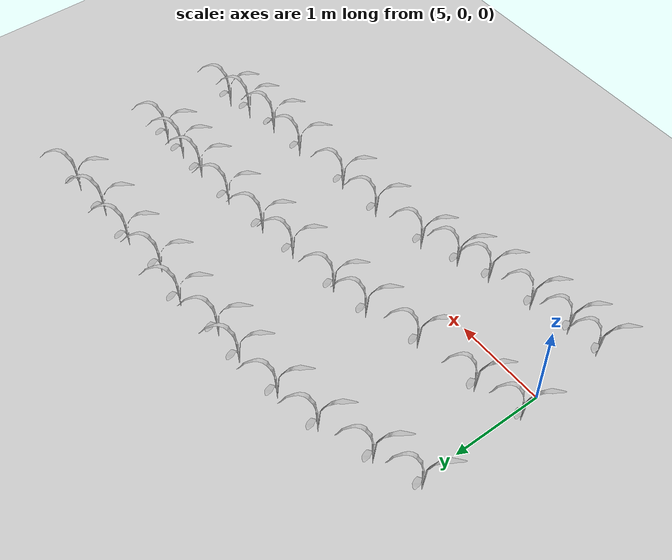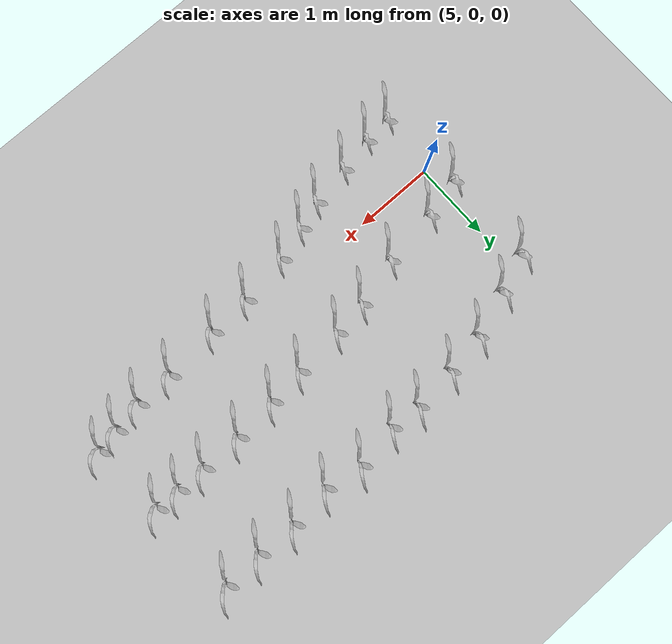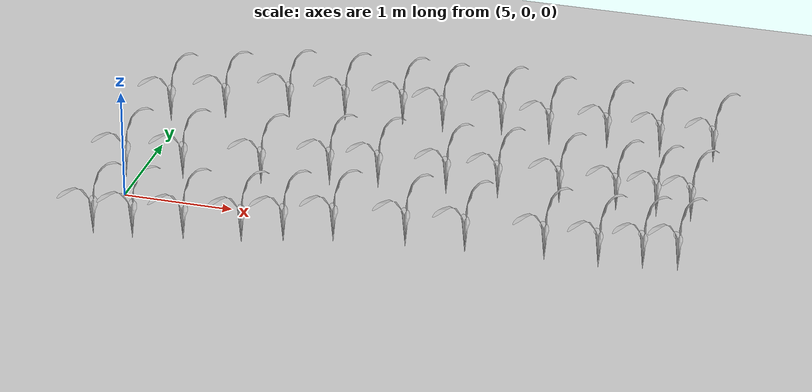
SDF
<sdf version="1.7">
 <world name="default">
  <model name="ground_plane">
   <static>1</static>
   <link name="link">
    <collision name="collision">
     <geometry><plane><normal>0 0 1</normal><size>100 100</size></plane></geometry>
     <surface><friction><ode><mu>100</mu><mu2>50</mu2></ode></friction></surface>
    </collision>
    <visual name="visual">
     <cast_shadows>0</cast_shadows>
     <geometry><plane><normal>0 0 1</normal><size>100 100</size></plane></geometry>
     <material>
      <script><uri>file://media/materials/scripts/gazebo.material</uri><name>Gazebo/Grey</name></script>
     </material>
    </visual>
   </link>
  </model>
  <model name="maize_02_clone_10">
   <pose>4.98717 -0.765127 0 1e-06 -3.5e-05 3.1e-05</pose>
   <link name="maize_02_link">
    <inertial>
     <pose>0 0 0.01 0 -0 0</pose>
     <mass>0.3</mass>
     <inertia>
      <ixx>0.00334167</ixx>
      <ixy>0</ixy>
      <ixz>0</ixz>
      <iyy>0.00334167</iyy>
      <iyz>0</iyz>
      <izz>1.66667e-05</izz>
     </inertia>
     <pose>0 0 0.1 0 -0 0</pose>
    </inertial>
    <collision name="collision">
     <pose>0 0 0.2 0 -0 0</pose>
     <geometry><box><size>0.02 0.02 0.4</size></box></geometry>
     <surface><friction><ode><mu>10</mu><mu2>10</mu2></ode></friction></surface>
    </collision>
    <visual name="visual">
     <geometry>
      <mesh><uri>model://maize_02/meshes/maize_02.dae</uri><scale>0.683166 0.683166 0.683166</scale></mesh>
     </geometry>
    </visual>
   </link>
  </model>
  <model name="maize_02_clone_11">
   <pose>5.33812 -0.73778 -0 -4e-06 -0 -0.000173</pose>
   <link name="maize_02_link">
    <inertial>
     <pose>0 0 0.01 0 -0 0</pose>
     <mass>0.3</mass>
     <inertia>
      <ixx>0.00334167</ixx>
      <ixy>0</ixy>
      <ixz>0</ixz>
      <iyy>0.00334167</iyy>
      <iyz>0</iyz>
      <izz>1.66667e-05</izz>
     </inertia>
     <pose>0 0 0.1 0 -0 0</pose>
    </inertial>
    <collision name="collision">
     <pose>0 0 0.2 0 -0 0</pose>
     <geometry><box><size>0.02 0.02 0.4</size></box></geometry>
     <surface><friction><ode><mu>10</mu><mu2>10</mu2></ode></friction></surface>
    </collision>
    <visual name="visual">
     <geometry>
      <mesh><uri>model://maize_02/meshes/maize_02.dae</uri><scale>0.683166 0.683166 0.683166</scale></mesh>
     </geometry>
    </visual>
   </link>
  </model>
  <model name="maize_02_clone_12">
   <pose>5.77464 -0.657881 -0 1e-06 -0 0.000187</pose>
   <link name="maize_02_link">
    <inertial>
     <pose>0 0 0.01 0 -0 0</pose>
     <mass>0.3</mass>
     <inertia>
      <ixx>0.00334167</ixx>
      <ixy>0</ixy>
      <ixz>0</ixz>
      <iyy>0.00334167</iyy>
      <iyz>0</iyz>
      <izz>1.66667e-05</izz>
     </inertia>
     <pose>0 0 0.1 0 -0 0</pose>
    </inertial>
    <collision name="collision">
     <pose>0 0 0.2 0 -0 0</pose>
     <geometry><box><size>0.02 0.02 0.4</size></box></geometry>
     <surface><friction><ode><mu>10</mu><mu2>10</mu2></ode></friction></surface>
    </collision>
    <visual name="visual">
     <geometry>
      <mesh><uri>model://maize_02/meshes/maize_02.dae</uri><scale>0.683166 0.683166 0.683166</scale></mesh>
     </geometry>
    </visual>
   </link>
  </model>
  <model name="maize_02_clone_13">
   <pose>6.27241 -0.564285 0 3.8e-05 2e-06 -1.8e-05</pose>
   <link name="maize_02_link">
    <inertial>
     <pose>0 0 0.01 0 -0 0</pose>
     <mass>0.3</mass>
     <inertia>
      <ixx>0.00334167</ixx>
      <ixy>0</ixy>
      <ixz>0</ixz>
      <iyy>0.00334167</iyy>
      <iyz>0</iyz>
      <izz>1.66667e-05</izz>
     </inertia>
     <pose>0 0 0.1 0 -0 0</pose>
    </inertial>
    <collision name="collision">
     <pose>0 0 0.2 0 -0 0</pose>
     <geometry><box><size>0.02 0.02 0.4</size></box></geometry>
     <surface><friction><ode><mu>10</mu><mu2>10</mu2></ode></friction></surface>
    </collision>
    <visual name="visual">
     <geometry>
      <mesh><uri>model://maize_02/meshes/maize_02.dae</uri><scale>0.683166 0.683166 0.683166</scale></mesh>
     </geometry>
    </visual>
   </link>
  </model>
  <model name="maize_02_clone_14">
   <pose>6.61643 -0.451672 -9e-06 -2e-06 -3.1e-05 -4.7e-05</pose>
   <link name="maize_02_link">
    <inertial>
     <pose>0 0 0.01 0 -0 0</pose>
     <mass>0.3</mass>
     <inertia>
      <ixx>0.00334167</ixx>
      <ixy>0</ixy>
      <ixz>0</ixz>
      <iyy>0.00334167</iyy>
      <iyz>0</iyz>
      <izz>1.66667e-05</izz>
     </inertia>
     <pose>0 0 0.1 0 -0 0</pose>
    </inertial>
    <collision name="collision">
     <pose>0 0 0.2 0 -0 0</pose>
     <geometry><box><size>0.02 0.02 0.4</size></box></geometry>
     <surface><friction><ode><mu>10</mu><mu2>10</mu2></ode></friction></surface>
    </collision>
    <visual name="visual">
     <geometry>
      <mesh><uri>model://maize_02/meshes/maize_02.dae</uri><scale>0.683166 0.683166 0.683166</scale></mesh>
     </geometry>
    </visual>
   </link>
  </model>
  <model name="maize_02_clone_15">
   <pose>7.02846 -0.323801 -0 -1e-06 1.4e-05 -1.8e-05</pose>
   <link name="maize_02_link">
    <inertial>
     <pose>0 0 0.01 0 -0 0</pose>
     <mass>0.3</mass>
     <inertia>
      <ixx>0.00334167</ixx>
      <ixy>0</ixy>
      <ixz>0</ixz>
      <iyy>0.00334167</iyy>
      <iyz>0</iyz>
      <izz>1.66667e-05</izz>
     </inertia>
     <pose>0 0 0.1 0 -0 0</pose>
    </inertial>
    <collision name="collision">
     <pose>0 0 0.2 0 -0 0</pose>
     <geometry><box><size>0.02 0.02 0.4</size></box></geometry>
     <surface><friction><ode><mu>10</mu><mu2>10</mu2></ode></friction></surface>
    </collision>
    <visual name="visual">
     <geometry>
      <mesh><uri>model://maize_02/meshes/maize_02.dae</uri><scale>0.683166 0.683166 0.683166</scale></mesh>
     </geometry>
    </visual>
   </link>
  </model>
  <model name="maize_02_clone_16">
   <pose>7.64889 -0.229599 0 -2.3e-05 9e-06 -0.000341</pose>
   <link name="maize_02_link">
    <inertial>
     <pose>0 0 0.01 0 -0 0</pose>
     <mass>0.3</mass>
     <inertia>
      <ixx>0.00334167</ixx>
      <ixy>0</ixy>
      <ixz>0</ixz>
      <iyy>0.00334167</iyy>
      <iyz>0</iyz>
      <izz>1.66667e-05</izz>
     </inertia>
     <pose>0 0 0.1 0 -0 0</pose>
    </inertial>
    <collision name="collision">
     <pose>0 0 0.2 0 -0 0</pose>
     <geometry><box><size>0.02 0.02 0.4</size></box></geometry>
     <surface><friction><ode><mu>10</mu><mu2>10</mu2></ode></friction></surface>
    </collision>
    <visual name="visual">
     <geometry>
      <mesh><uri>model://maize_02/meshes/maize_02.dae</uri><scale>0.683166 0.683166 0.683166</scale></mesh>
     </geometry>
    </visual>
   </link>
  </model>
  <model name="maize_02_clone_17">
   <pose>8.17413 -0.201564 0 -2.6e-05 -5e-06 -9e-05</pose>
   <link name="maize_02_link">
    <inertial>
     <pose>0 0 0.01 0 -0 0</pose>
     <mass>0.3</mass>
     <inertia>
      <ixx>0.00334167</ixx>
      <ixy>0</ixy>
      <ixz>0</ixz>
      <iyy>0.00334167</iyy>
      <iyz>0</iyz>
      <izz>1.66667e-05</izz>
     </inertia>
     <pose>0 0 0.1 0 -0 0</pose>
    </inertial>
    <collision name="collision">
     <pose>0 0 0.2 0 -0 0</pose>
     <geometry><box><size>0.02 0.02 0.4</size></box></geometry>
     <surface><friction><ode><mu>10</mu><mu2>10</mu2></ode></friction></surface>
    </collision>
    <visual name="visual">
     <geometry>
      <mesh><uri>model://maize_02/meshes/maize_02.dae</uri><scale>0.683166 0.683166 0.683166</scale></mesh>
     </geometry>
    </visual>
   </link>
  </model>
  <model name="maize_02_clone_18">
   <pose>8.86057 -0.137301 -0 4e-06 -0 -0.000171</pose>
   <link name="maize_02_link">
    <inertial>
     <pose>0 0 0.01 0 -0 0</pose>
     <mass>0.3</mass>
     <inertia>
      <ixx>0.00334167</ixx>
      <ixy>0</ixy>
      <ixz>0</ixz>
      <iyy>0.00334167</iyy>
      <iyz>0</iyz>
      <izz>1.66667e-05</izz>
     </inertia>
     <pose>0 0 0.1 0 -0 0</pose>
    </inertial>
    <collision name="collision">
     <pose>0 0 0.2 0 -0 0</pose>
     <geometry><box><size>0.02 0.02 0.4</size></box></geometry>
     <surface><friction><ode><mu>10</mu><mu2>10</mu2></ode></friction></surface>
    </collision>
    <visual name="visual">
     <geometry>
      <mesh><uri>model://maize_02/meshes/maize_02.dae</uri><scale>0.683166 0.683166 0.683166</scale></mesh>
     </geometry>
    </visual>
   </link>
  </model>
  <model name="maize_02_clone_19">
   <pose>9.33472 -0.1297 -0 -2e-06 -0 4e-06</pose>
   <link name="maize_02_link">
    <inertial>
     <pose>0 0 0.01 0 -0 0</pose>
     <mass>0.3</mass>
     <inertia>
      <ixx>0.00334167</ixx>
      <ixy>0</ixy>
      <ixz>0</ixz>
      <iyy>0.00334167</iyy>
      <iyz>0</iyz>
      <izz>1.66667e-05</izz>
     </inertia>
     <pose>0 0 0.1 0 -0 0</pose>
    </inertial>
    <collision name="collision">
     <pose>0 0 0.2 0 -0 0</pose>
     <geometry><box><size>0.02 0.02 0.4</size></box></geometry>
     <surface><friction><ode><mu>10</mu><mu2>10</mu2></ode></friction></surface>
    </collision>
    <visual name="visual">
     <geometry>
      <mesh><uri>model://maize_02/meshes/maize_02.dae</uri><scale>0.683166 0.683166 0.683166</scale></mesh>
     </geometry>
    </visual>
   </link>
  </model>
  <model name="maize_02_clone_20">
   <pose>10 -0 0 -1.4e-05 3e-06 -1.7e-05</pose>
   <link name="maize_02_link">
    <inertial>
     <pose>0 0 0.01 0 -0 0</pose>
     <mass>0.3</mass>
     <inertia>
      <ixx>0.00334167</ixx>
      <ixy>0</ixy>
      <ixz>0</ixz>
      <iyy>0.00334167</iyy>
      <iyz>0</iyz>
      <izz>1.66667e-05</izz>
     </inertia>
     <pose>0 0 0.1 0 -0 0</pose>
    </inertial>
    <collision name="collision">
     <pose>0 0 0.2 0 -0 0</pose>
     <geometry><box><size>0.02 0.02 0.4</size></box></geometry>
     <surface><friction><ode><mu>10</mu><mu2>10</mu2></ode></friction></surface>
    </collision>
    <visual name="visual">
     <geometry>
      <mesh><uri>model://maize_02/meshes/maize_02.dae</uri><scale>0.683166 0.683166 0.683166</scale></mesh>
     </geometry>
    </visual>
   </link>
  </model>
  <model name="maize_02_clone_21">
   <pose>9.70744 -0.060396 -9e-06 2.4e-05 6e-06 3.4e-05</pose>
   <link name="maize_02_link">
    <inertial>
     <pose>0 0 0.01 0 -0 0</pose>
     <mass>0.3</mass>
     <inertia>
      <ixx>0.00334167</ixx>
      <ixy>0</ixy>
      <ixz>0</ixz>
      <iyy>0.00334167</iyy>
      <iyz>0</iyz>
      <izz>1.66667e-05</izz>
     </inertia>
     <pose>0 0 0.1 0 -0 0</pose>
    </inertial>
    <collision name="collision">
     <pose>0 0 0.2 0 -0 0</pose>
     <geometry><box><size>0.02 0.02 0.4</size></box></geometry>
     <surface><friction><ode><mu>10</mu><mu2>10</mu2></ode></friction></surface>
    </collision>
    <visual name="visual">
     <geometry>
      <mesh><uri>model://maize_02/meshes/maize_02.dae</uri><scale>0.683166 0.683166 0.683166</scale></mesh>
     </geometry>
    </visual>
   </link>
  </model>
  <model name="maize_02_clone_34">
   <pose>4.90415 0.302408 -9e-06 -1.7e-05 2e-06 3.2e-05</pose>
   <link name="maize_02_link">
    <inertial>
     <pose>0 0 0.01 0 -0 0</pose>
     <mass>0.3</mass>
     <inertia>
      <ixx>0.00334167</ixx>
      <ixy>0</ixy>
      <ixz>0</ixz>
      <iyy>0.00334167</iyy>
      <iyz>0</iyz>
      <izz>1.66667e-05</izz>
     </inertia>
     <pose>0 0 0.1 0 -0 0</pose>
    </inertial>
    <collision name="collision">
     <pose>0 0 0.2 0 -0 0</pose>
     <geometry><box><size>0.02 0.02 0.4</size></box></geometry>
     <surface><friction><ode><mu>10</mu><mu2>10</mu2></ode></friction></surface>
    </collision>
    <visual name="visual">
     <geometry>
      <mesh><uri>model://maize_02/meshes/maize_02.dae</uri><scale>0.683166 0.683166 0.683166</scale></mesh>
     </geometry>
    </visual>
   </link>
  </model>
  <model name="maize_02_clone_35">
   <pose>5.39817 0.421571 -8e-06 5.9e-05 -3e-06 6.3e-05</pose>
   <link name="maize_02_link">
    <inertial>
     <pose>0 0 0.01 0 -0 0</pose>
     <mass>0.3</mass>
     <inertia>
      <ixx>0.00334167</ixx>
      <ixy>0</ixy>
      <ixz>0</ixz>
      <iyy>0.00334167</iyy>
      <iyz>0</iyz>
      <izz>1.66667e-05</izz>
     </inertia>
     <pose>0 0 0.1 0 -0 0</pose>
    </inertial>
    <collision name="collision">
     <pose>0 0 0.2 0 -0 0</pose>
     <geometry><box><size>0.02 0.02 0.4</size></box></geometry>
     <surface><friction><ode><mu>10</mu><mu2>10</mu2></ode></friction></surface>
    </collision>
    <visual name="visual">
     <geometry>
      <mesh><uri>model://maize_02/meshes/maize_02.dae</uri><scale>0.683166 0.683166 0.683166</scale></mesh>
     </geometry>
    </visual>
   </link>
  </model>
  <model name="maize_02_clone_36">
   <pose>6.09874 0.518274 -0 -3e-06 4e-06 0.0001</pose>
   <link name="maize_02_link">
    <inertial>
     <pose>0 0 0.01 0 -0 0</pose>
     <mass>0.3</mass>
     <inertia>
      <ixx>0.00334167</ixx>
      <ixy>0</ixy>
      <ixz>0</ixz>
      <iyy>0.00334167</iyy>
      <iyz>0</iyz>
      <izz>1.66667e-05</izz>
     </inertia>
     <pose>0 0 0.1 0 -0 0</pose>
    </inertial>
    <collision name="collision">
     <pose>0 0 0.2 0 -0 0</pose>
     <geometry><box><size>0.02 0.02 0.4</size></box></geometry>
     <surface><friction><ode><mu>10</mu><mu2>10</mu2></ode></friction></surface>
    </collision>
    <visual name="visual">
     <geometry>
      <mesh><uri>model://maize_02/meshes/maize_02.dae</uri><scale>0.683166 0.683166 0.683166</scale></mesh>
     </geometry>
    </visual>
   </link>
  </model>
  <model name="maize_02_clone_37">
   <pose>6.68536 0.680392 -0 0 -4e-06 5.4e-05</pose>
   <link name="maize_02_link">
    <inertial>
     <pose>0 0 0.01 0 -0 0</pose>
     <mass>0.3</mass>
     <inertia>
      <ixx>0.00334167</ixx>
      <ixy>0</ixy>
      <ixz>0</ixz>
      <iyy>0.00334167</iyy>
      <iyz>0</iyz>
      <izz>1.66667e-05</izz>
     </inertia>
     <pose>0 0 0.1 0 -0 0</pose>
    </inertial>
    <collision name="collision">
     <pose>0 0 0.2 0 -0 0</pose>
     <geometry><box><size>0.02 0.02 0.4</size></box></geometry>
     <surface><friction><ode><mu>10</mu><mu2>10</mu2></ode></friction></surface>
    </collision>
    <visual name="visual">
     <geometry>
      <mesh><uri>model://maize_02/meshes/maize_02.dae</uri><scale>0.683166 0.683166 0.683166</scale></mesh>
     </geometry>
    </visual>
   </link>
  </model>
  <model name="maize_02_clone_38">
   <pose>7.11717 0.742825 -0 0 2e-06 -6.6e-05</pose>
   <link name="maize_02_link">
    <inertial>
     <pose>0 0 0.01 0 -0 0</pose>
     <mass>0.3</mass>
     <inertia>
      <ixx>0.00334167</ixx>
      <ixy>0</ixy>
      <ixz>0</ixz>
      <iyy>0.00334167</iyy>
      <iyz>0</iyz>
      <izz>1.66667e-05</izz>
     </inertia>
     <pose>0 0 0.1 0 -0 0</pose>
    </inertial>
    <collision name="collision">
     <pose>0 0 0.2 0 -0 0</pose>
     <geometry><box><size>0.02 0.02 0.4</size></box></geometry>
     <surface><friction><ode><mu>10</mu><mu2>10</mu2></ode></friction></surface>
    </collision>
    <visual name="visual">
     <geometry>
      <mesh><uri>model://maize_02/meshes/maize_02.dae</uri><scale>0.683166 0.683166 0.683166</scale></mesh>
     </geometry>
    </visual>
   </link>
  </model>
  <model name="maize_02_clone_39">
   <pose>7.72823 0.79479 -0 3e-06 -0 0.000145</pose>
   <link name="maize_02_link">
    <inertial>
     <pose>0 0 0.01 0 -0 0</pose>
     <mass>0.3</mass>
     <inertia>
      <ixx>0.00334167</ixx>
      <ixy>0</ixy>
      <ixz>0</ixz>
      <iyy>0.00334167</iyy>
      <iyz>0</iyz>
      <izz>1.66667e-05</izz>
     </inertia>
     <pose>0 0 0.1 0 -0 0</pose>
    </inertial>
    <collision name="collision">
     <pose>0 0 0.2 0 -0 0</pose>
     <geometry><box><size>0.02 0.02 0.4</size></box></geometry>
     <surface><friction><ode><mu>10</mu><mu2>10</mu2></ode></friction></surface>
    </collision>
    <visual name="visual">
     <geometry>
      <mesh><uri>model://maize_02/meshes/maize_02.dae</uri><scale>0.683166 0.683166 0.683166</scale></mesh>
     </geometry>
    </visual>
   </link>
  </model>
  <model name="maize_02_clone_40">
   <pose>8.18719 0.844298 0 -2e-06 2.1e-05 4.4e-05</pose>
   <link name="maize_02_link">
    <inertial>
     <pose>0 0 0.01 0 -0 0</pose>
     <mass>0.3</mass>
     <inertia>
      <ixx>0.00334167</ixx>
      <ixy>0</ixy>
      <ixz>0</ixz>
      <iyy>0.00334167</iyy>
      <iyz>0</iyz>
      <izz>1.66667e-05</izz>
     </inertia>
     <pose>0 0 0.1 0 -0 0</pose>
    </inertial>
    <collision name="collision">
     <pose>0 0 0.2 0 -0 0</pose>
     <geometry><box><size>0.02 0.02 0.4</size></box></geometry>
     <surface><friction><ode><mu>10</mu><mu2>10</mu2></ode></friction></surface>
    </collision>
    <visual name="visual">
     <geometry>
      <mesh><uri>model://maize_02/meshes/maize_02.dae</uri><scale>0.683166 0.683166 0.683166</scale></mesh>
     </geometry>
    </visual>
   </link>
  </model>
  <model name="maize_02_clone_41">
   <pose>8.73321 0.894981 1e-06 -3.9e-05 1.2e-05 2.5e-05</pose>
   <link name="maize_02_link">
    <inertial>
     <pose>0 0 0.01 0 -0 0</pose>
     <mass>0.3</mass>
     <inertia>
      <ixx>0.00334167</ixx>
      <ixy>0</ixy>
      <ixz>0</ixz>
      <iyy>0.00334167</iyy>
      <iyz>0</iyz>
      <izz>1.66667e-05</izz>
     </inertia>
     <pose>0 0 0.1 0 -0 0</pose>
    </inertial>
    <collision name="collision">
     <pose>0 0 0.2 0 -0 0</pose>
     <geometry><box><size>0.02 0.02 0.4</size></box></geometry>
     <surface><friction><ode><mu>10</mu><mu2>10</mu2></ode></friction></surface>
    </collision>
    <visual name="visual">
     <geometry>
      <mesh><uri>model://maize_02/meshes/maize_02.dae</uri><scale>0.683166 0.683166 0.683166</scale></mesh>
     </geometry>
    </visual>
   </link>
  </model>
  <model name="maize_02_clone_42">
   <pose>9.24563 0.900565 -0 0 4e-06 -1.2e-05</pose>
   <link name="maize_02_link">
    <inertial>
     <pose>0 0 0.01 0 -0 0</pose>
     <mass>0.3</mass>
     <inertia>
      <ixx>0.00334167</ixx>
      <ixy>0</ixy>
      <ixz>0</ixz>
      <iyy>0.00334167</iyy>
      <iyz>0</iyz>
      <izz>1.66667e-05</izz>
     </inertia>
     <pose>0 0 0.1 0 -0 0</pose>
    </inertial>
    <collision name="collision">
     <pose>0 0 0.2 0 -0 0</pose>
     <geometry><box><size>0.02 0.02 0.4</size></box></geometry>
     <surface><friction><ode><mu>10</mu><mu2>10</mu2></ode></friction></surface>
    </collision>
    <visual name="visual">
     <geometry>
      <mesh><uri>model://maize_02/meshes/maize_02.dae</uri><scale>0.683166 0.683166 0.683166</scale></mesh>
     </geometry>
    </visual>
   </link>
  </model>
  <model name="maize_02_clone_43">
   <pose>9.60797 0.90127 -0 0 3e-06 7e-06</pose>
   <link name="maize_02_link">
    <inertial>
     <pose>0 0 0.01 0 -0 0</pose>
     <mass>0.3</mass>
     <inertia>
      <ixx>0.00334167</ixx>
      <ixy>0</ixy>
      <ixz>0</ixz>
      <iyy>0.00334167</iyy>
      <iyz>0</iyz>
      <izz>1.66667e-05</izz>
     </inertia>
     <pose>0 0 0.1 0 -0 0</pose>
    </inertial>
    <collision name="collision">
     <pose>0 0 0.2 0 -0 0</pose>
     <geometry><box><size>0.02 0.02 0.4</size></box></geometry>
     <surface><friction><ode><mu>10</mu><mu2>10</mu2></ode></friction></surface>
    </collision>
    <visual name="visual">
     <geometry>
      <mesh><uri>model://maize_02/meshes/maize_02.dae</uri><scale>0.683166 0.683166 0.683166</scale></mesh>
     </geometry>
    </visual>
   </link>
  </model>
  <model name="maize_02_clone_44">
   <pose>9.91747 0.900106 -0 -3e-06 0 0.000123</pose>
   <link name="maize_02_link">
    <inertial>
     <pose>0 0 0.01 0 -0 0</pose>
     <mass>0.3</mass>
     <inertia>
      <ixx>0.00334167</ixx>
      <ixy>0</ixy>
      <ixz>0</ixz>
      <iyy>0.00334167</iyy>
      <iyz>0</iyz>
      <izz>1.66667e-05</izz>
     </inertia>
     <pose>0 0 0.1 0 -0 0</pose>
    </inertial>
    <collision name="collision">
     <pose>0 0 0.2 0 -0 0</pose>
     <geometry><box><size>0.02 0.02 0.4</size></box></geometry>
     <surface><friction><ode><mu>10</mu><mu2>10</mu2></ode></friction></surface>
    </collision>
    <visual name="visual">
     <geometry>
      <mesh><uri>model://maize_02/meshes/maize_02.dae</uri><scale>0.683166 0.683166 0.683166</scale></mesh>
     </geometry>
    </visual>
   </link>
  </model>
  <model name="maize_02_clone_56">
   <pose>4.92146 1.46881 -9e-06 3.7e-05 2e-06 6.6e-05</pose>
   <link name="maize_02_link">
    <inertial>
     <pose>0 0 0.01 0 -0 0</pose>
     <mass>0.3</mass>
     <inertia>
      <ixx>0.00334167</ixx>
      <ixy>0</ixy>
      <ixz>0</ixz>
      <iyy>0.00334167</iyy>
      <iyz>0</iyz>
      <izz>1.66667e-05</izz>
     </inertia>
     <pose>0 0 0.1 0 -0 0</pose>
    </inertial>
    <collision name="collision">
     <pose>0 0 0.2 0 -0 0</pose>
     <geometry><box><size>0.02 0.02 0.4</size></box></geometry>
     <surface><friction><ode><mu>10</mu><mu2>10</mu2></ode></friction></surface>
    </collision>
    <visual name="visual">
     <geometry>
      <mesh><uri>model://maize_02/meshes/maize_02.dae</uri><scale>0.683166 0.683166 0.683166</scale></mesh>
     </geometry>
    </visual>
   </link>
  </model>
  <model name="maize_02_clone_57">
   <pose>5.38932 1.64277 0 1.1e-05 1.1e-05 8e-06</pose>
   <link name="maize_02_link">
    <inertial>
     <pose>0 0 0.01 0 -0 0</pose>
     <mass>0.3</mass>
     <inertia>
      <ixx>0.00334167</ixx>
      <ixy>0</ixy>
      <ixz>0</ixz>
      <iyy>0.00334167</iyy>
      <iyz>0</iyz>
      <izz>1.66667e-05</izz>
     </inertia>
     <pose>0 0 0.1 0 -0 0</pose>
    </inertial>
    <collision name="collision">
     <pose>0 0 0.2 0 -0 0</pose>
     <geometry><box><size>0.02 0.02 0.4</size></box></geometry>
     <surface><friction><ode><mu>10</mu><mu2>10</mu2></ode></friction></surface>
    </collision>
    <visual name="visual">
     <geometry>
      <mesh><uri>model://maize_02/meshes/maize_02.dae</uri><scale>0.683166 0.683166 0.683166</scale></mesh>
     </geometry>
    </visual>
   </link>
  </model>
  <model name="maize_02_clone_58">
   <pose>5.94229 1.83449 -0 2e-06 -1.3e-05 -1.9e-05</pose>
   <link name="maize_02_link">
    <inertial>
     <pose>0 0 0.01 0 -0 0</pose>
     <mass>0.3</mass>
     <inertia>
      <ixx>0.00334167</ixx>
      <ixy>0</ixy>
      <ixz>0</ixz>
      <iyy>0.00334167</iyy>
      <iyz>0</iyz>
      <izz>1.66667e-05</izz>
     </inertia>
     <pose>0 0 0.1 0 -0 0</pose>
    </inertial>
    <collision name="collision">
     <pose>0 0 0.2 0 -0 0</pose>
     <geometry><box><size>0.02 0.02 0.4</size></box></geometry>
     <surface><friction><ode><mu>10</mu><mu2>10</mu2></ode></friction></surface>
    </collision>
    <visual name="visual">
     <geometry>
      <mesh><uri>model://maize_02/meshes/maize_02.dae</uri><scale>0.683166 0.683166 0.683166</scale></mesh>
     </geometry>
    </visual>
   </link>
  </model>
  <model name="maize_02_clone_59">
   <pose>6.45398 1.9152 -9e-06 1.4e-05 1e-06 3.4e-05</pose>
   <link name="maize_02_link">
    <inertial>
     <pose>0 0 0.01 0 -0 0</pose>
     <mass>0.3</mass>
     <inertia>
      <ixx>0.00334167</ixx>
      <ixy>0</ixy>
      <ixz>0</ixz>
      <iyy>0.00334167</iyy>
      <iyz>0</iyz>
      <izz>1.66667e-05</izz>
     </inertia>
     <pose>0 0 0.1 0 -0 0</pose>
    </inertial>
    <collision name="collision">
     <pose>0 0 0.2 0 -0 0</pose>
     <geometry><box><size>0.02 0.02 0.4</size></box></geometry>
     <surface><friction><ode><mu>10</mu><mu2>10</mu2></ode></friction></surface>
    </collision>
    <visual name="visual">
     <geometry>
      <mesh><uri>model://maize_02/meshes/maize_02.dae</uri><scale>0.683166 0.683166 0.683166</scale></mesh>
     </geometry>
    </visual>
   </link>
  </model>
  <model name="maize_02_clone_60">
   <pose>6.98781 1.97249 1e-06 1e-05 7.8e-05 3e-06</pose>
   <link name="maize_02_link">
    <inertial>
     <pose>0 0 0.01 0 -0 0</pose>
     <mass>0.3</mass>
     <inertia>
      <ixx>0.00334167</ixx>
      <ixy>0</ixy>
      <ixz>0</ixz>
      <iyy>0.00334167</iyy>
      <iyz>0</iyz>
      <izz>1.66667e-05</izz>
     </inertia>
     <pose>0 0 0.1 0 -0 0</pose>
    </inertial>
    <collision name="collision">
     <pose>0 0 0.2 0 -0 0</pose>
     <geometry><box><size>0.02 0.02 0.4</size></box></geometry>
     <surface><friction><ode><mu>10</mu><mu2>10</mu2></ode></friction></surface>
    </collision>
    <visual name="visual">
     <geometry>
      <mesh><uri>model://maize_02/meshes/maize_02.dae</uri><scale>0.683166 0.683166 0.683166</scale></mesh>
     </geometry>
    </visual>
   </link>
  </model>
  <model name="maize_02_clone_61">
   <pose>7.37462 1.94781 0 1.7e-05 2.4e-05 4e-06</pose>
   <link name="maize_02_link">
    <inertial>
     <pose>0 0 0.01 0 -0 0</pose>
     <mass>0.3</mass>
     <inertia>
      <ixx>0.00334167</ixx>
      <ixy>0</ixy>
      <ixz>0</ixz>
      <iyy>0.00334167</iyy>
      <iyz>0</iyz>
      <izz>1.66667e-05</izz>
     </inertia>
     <pose>0 0 0.1 0 -0 0</pose>
    </inertial>
    <collision name="collision">
     <pose>0 0 0.2 0 -0 0</pose>
     <geometry><box><size>0.02 0.02 0.4</size></box></geometry>
     <surface><friction><ode><mu>10</mu><mu2>10</mu2></ode></friction></surface>
    </collision>
    <visual name="visual">
     <geometry>
      <mesh><uri>model://maize_02/meshes/maize_02.dae</uri><scale>0.683166 0.683166 0.683166</scale></mesh>
     </geometry>
    </visual>
   </link>
  </model>
  <model name="maize_02_clone_62">
   <pose>7.90705 2.03814 -0 4e-06 0 2.5e-05</pose>
   <link name="maize_02_link">
    <inertial>
     <pose>0 0 0.01 0 -0 0</pose>
     <mass>0.3</mass>
     <inertia>
      <ixx>0.00334167</ixx>
      <ixy>0</ixy>
      <ixz>0</ixz>
      <iyy>0.00334167</iyy>
      <iyz>0</iyz>
      <izz>1.66667e-05</izz>
     </inertia>
     <pose>0 0 0.1 0 -0 0</pose>
    </inertial>
    <collision name="collision">
     <pose>0 0 0.2 0 -0 0</pose>
     <geometry><box><size>0.02 0.02 0.4</size></box></geometry>
     <surface><friction><ode><mu>10</mu><mu2>10</mu2></ode></friction></surface>
    </collision>
    <visual name="visual">
     <geometry>
      <mesh><uri>model://maize_02/meshes/maize_02.dae</uri><scale>0.683166 0.683166 0.683166</scale></mesh>
     </geometry>
    </visual>
   </link>
  </model>
  <model name="maize_02_clone_63">
   <pose>8.37286 1.96049 0 -2e-06 -6e-06 1e-06</pose>
   <link name="maize_02_link">
    <inertial>
     <pose>0 0 0.01 0 -0 0</pose>
     <mass>0.3</mass>
     <inertia>
      <ixx>0.00334167</ixx>
      <ixy>0</ixy>
      <ixz>0</ixz>
      <iyy>0.00334167</iyy>
      <iyz>0</iyz>
      <izz>1.66667e-05</izz>
     </inertia>
     <pose>0 0 0.1 0 -0 0</pose>
    </inertial>
    <collision name="collision">
     <pose>0 0 0.2 0 -0 0</pose>
     <geometry><box><size>0.02 0.02 0.4</size></box></geometry>
     <surface><friction><ode><mu>10</mu><mu2>10</mu2></ode></friction></surface>
    </collision>
    <visual name="visual">
     <geometry>
      <mesh><uri>model://maize_02/meshes/maize_02.dae</uri><scale>0.683166 0.683166 0.683166</scale></mesh>
     </geometry>
    </visual>
   </link>
  </model>
  <model name="maize_02_clone_64">
   <pose>8.89573 2.02562 -0 3e-06 -0 1.7e-05</pose>
   <link name="maize_02_link">
    <inertial>
     <pose>0 0 0.01 0 -0 0</pose>
     <mass>0.3</mass>
     <inertia>
      <ixx>0.00334167</ixx>
      <ixy>0</ixy>
      <ixz>0</ixz>
      <iyy>0.00334167</iyy>
      <iyz>0</iyz>
      <izz>1.66667e-05</izz>
     </inertia>
     <pose>0 0 0.1 0 -0 0</pose>
    </inertial>
    <collision name="collision">
     <pose>0 0 0.2 0 -0 0</pose>
     <geometry><box><size>0.02 0.02 0.4</size></box></geometry>
     <surface><friction><ode><mu>10</mu><mu2>10</mu2></ode></friction></surface>
    </collision>
    <visual name="visual">
     <geometry>
      <mesh><uri>model://maize_02/meshes/maize_02.dae</uri><scale>0.683166 0.683166 0.683166</scale></mesh>
     </geometry>
    </visual>
   </link>
  </model>
  <model name="maize_02_clone_65">
   <pose>9.38808 2.01229 -0 0 4e-06 0</pose>
   <link name="maize_02_link">
    <inertial>
     <pose>0 0 0.01 0 -0 0</pose>
     <mass>0.3</mass>
     <inertia>
      <ixx>0.00334167</ixx>
      <ixy>0</ixy>
      <ixz>0</ixz>
      <iyy>0.00334167</iyy>
      <iyz>0</iyz>
      <izz>1.66667e-05</izz>
     </inertia>
     <pose>0 0 0.1 0 -0 0</pose>
    </inertial>
    <collision name="collision">
     <pose>0 0 0.2 0 -0 0</pose>
     <geometry><box><size>0.02 0.02 0.4</size></box></geometry>
     <surface><friction><ode><mu>10</mu><mu2>10</mu2></ode></friction></surface>
    </collision>
    <visual name="visual">
     <geometry>
      <mesh><uri>model://maize_02/meshes/maize_02.dae</uri><scale>0.683166 0.683166 0.683166</scale></mesh>
     </geometry>
    </visual>
   </link>
  </model>
  <model name="maize_02_clone_66">
   <pose>9.87366 2.03788 -0 -0 2e-06 -2e-06</pose>
   <link name="maize_02_link">
    <inertial>
     <pose>0 0 0.01 0 -0 0</pose>
     <mass>0.3</mass>
     <inertia>
      <ixx>0.00334167</ixx>
      <ixy>0</ixy>
      <ixz>0</ixz>
      <iyy>0.00334167</iyy>
      <iyz>0</iyz>
      <izz>1.66667e-05</izz>
     </inertia>
     <pose>0 0 0.1 0 -0 0</pose>
    </inertial>
    <collision name="collision">
     <pose>0 0 0.2 0 -0 0</pose>
     <geometry><box><size>0.02 0.02 0.4</size></box></geometry>
     <surface><friction><ode><mu>10</mu><mu2>10</mu2></ode></friction></surface>
    </collision>
    <visual name="visual">
     <geometry>
      <mesh><uri>model://maize_02/meshes/maize_02.dae</uri><scale>0.683166 0.683166 0.683166</scale></mesh>
     </geometry>
    </visual>
   </link>
  </model>
 </world>
</sdf>
